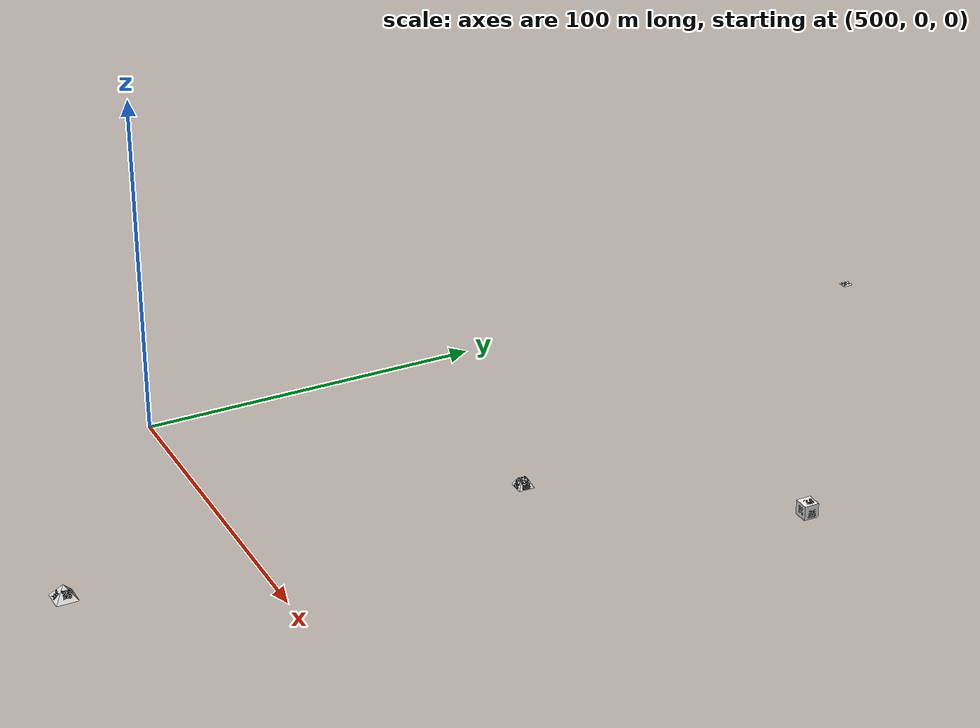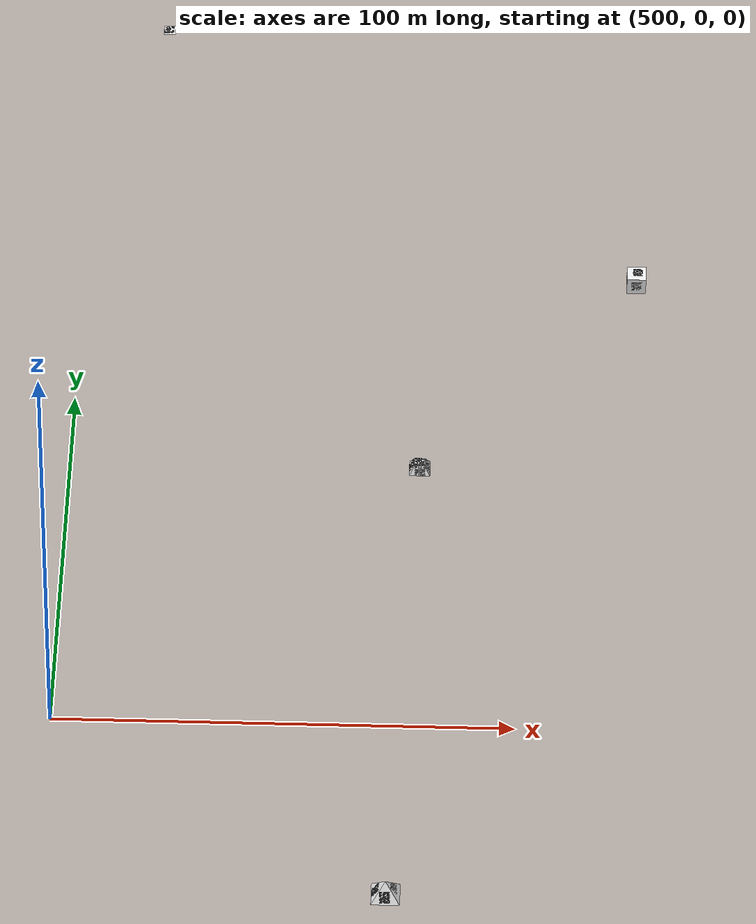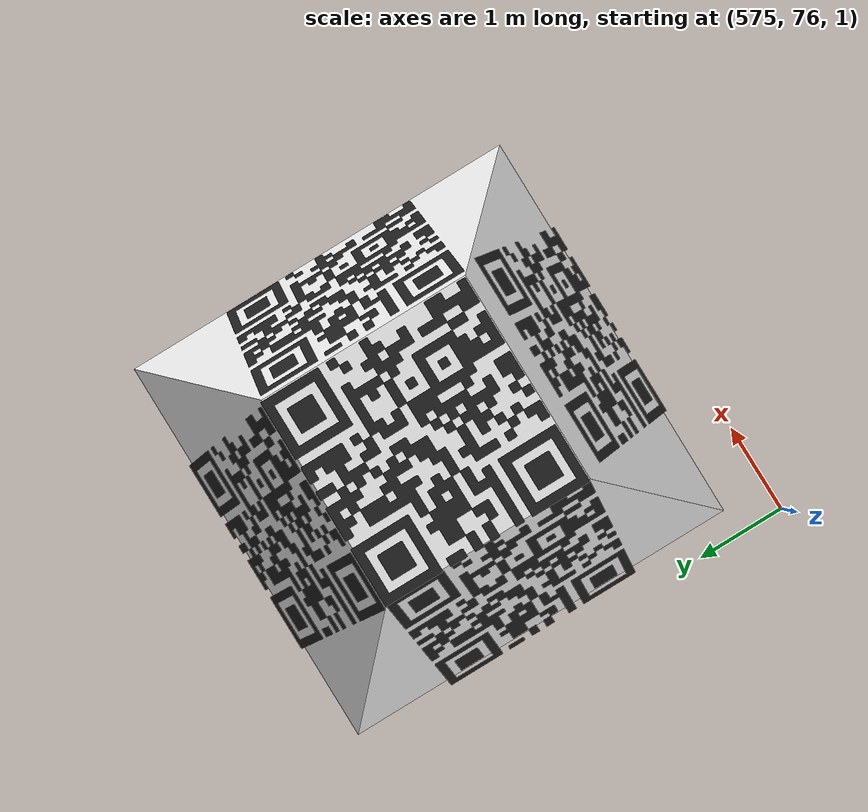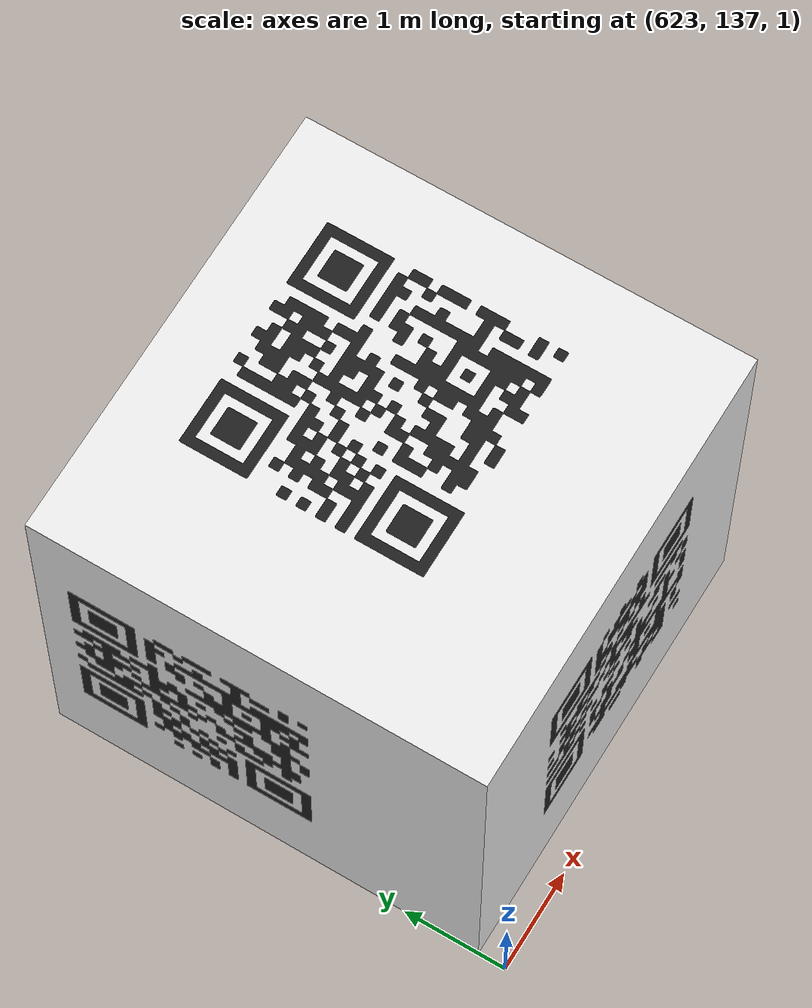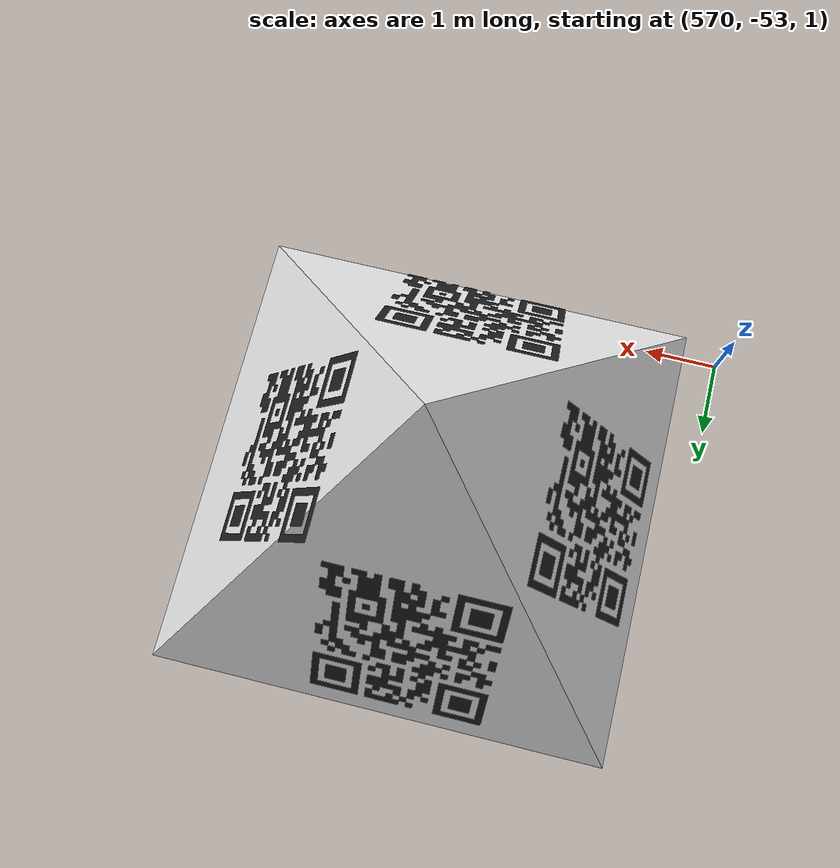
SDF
<sdf version="1.7">
 <world name="default">
  <physics name="default_physics" default="0" type="ode">
   <ode>
    <solver>
     <type>quick</type>
     <iters>100</iters>
     <sor>1</sor>
     <use_dynamic_moi_rescaling>0</use_dynamic_moi_rescaling>
    </solver>
    <constraints>
     <cfm>0</cfm>
     <erp>0.2</erp>
     <contact_max_correcting_vel>0.1</contact_max_correcting_vel>
     <contact_surface_layer>0</contact_surface_layer>
    </constraints>
   </ode>
   <real_time_update_rate>400</real_time_update_rate>
   <max_step_size>0.0025</max_step_size>
   <real_time_factor>1</real_time_factor>
  </physics>
  <scene>
   <sky><clouds><speed>5</speed></clouds></sky>
   <ambient>0.95 0.95 0.95 1</ambient>
   <background>0.3 0.3 0.3 1</background>
   <shadows>1</shadows>
  </scene>
  <gravity>0 0 -9.8</gravity>
  <magnetic_field>6e-06 2.3e-05 -4.2e-05</magnetic_field>
  <atmosphere type="adiabatic"/>
  <audio><device>default</device></audio>
  <spherical_coordinates>
   <surface_model>EARTH_WGS84</surface_model>
   <latitude_deg>0</latitude_deg>
   <longitude_deg>0</longitude_deg>
   <elevation>0</elevation>
   <heading_deg>0</heading_deg>
  </spherical_coordinates>
  <model name="square_qr">
   <pose>514.1 223.068 1 0 -0 0</pose>
   <static>1</static>
   <link name="link">
    <visual name="visual">
     <geometry><mesh><uri>model://square_qr/meshes/square_qr.dae</uri></mesh></geometry>
     <material><script><name>Gazebo/White</name><uri>__default__</uri></script></material>
    </visual>
   </link>
  </model>
  <model name="cube_qr_added">
   <pose>622.998 137.263 1 0 -0 0</pose>
   <static>1</static>
   <link name="link">
    <visual name="visual">
     <geometry>
      <mesh><scale>2 2 2</scale><uri>model://cube_qr_added/meshes/cube_qr_added.dae</uri></mesh>
     </geometry>
     <material><script><name>Gazebo/White</name><uri>__default__</uri></script></material>
    </visual>
   </link>
  </model>
  <model name="piramid_qr_cutted">
   <pose>575.303 76.5247 1 0 -0 0</pose>
   <static>1</static>
   <link name="link">
    <visual name="visual">
     <geometry>
      <mesh><scale>3 3 3</scale><uri>model://piramid_qr_cutted/meshes/piramid_qr_cutted.dae</uri></mesh>
     </geometry>
     <material><script><name>Gazebo/White</name><uri>__default__</uri></script></material>
    </visual>
   </link>
  </model>
  <model name="piramid_qr_added">
   <pose>570.474 -47.2439 1 0 -0 0</pose>
   <static>1</static>
   <link name="link">
    <visual name="visual">
     <geometry>
      <mesh><scale>5 5 5</scale><uri>model://piramid_qr_added/meshes/piramid_qr_added.dae</uri></mesh>
     </geometry>
     <material><script><name>Gazebo/White</name><uri>__default__</uri></script></material>
    </visual>
   </link>
  </model>
  <model name="testucusu_m">
   <pose>515.375 224.607 1.09305 0 -0 0</pose>
   <static>1</static>
   <link name="link">
    <visual name="visual">
     <geometry><mesh><scale>3 3 1e-06</scale><uri>model://QR_06/meshes/testucusu_m.stl</uri></mesh></geometry>
     <material><script><name>Gazebo/Black</name><uri>__default__</uri></script></material>
    </visual>
   </link>
  </model>
  <model name="teknofest_h">
   <pose>625.378 141.545 2.92254 -1.5708 0 0</pose>
   <static>1</static>
   <link name="link">
    <visual name="visual">
     <geometry><mesh><scale>3 3 1e-06</scale><uri>model://QR_12/meshes/teknofest_h.stl</uri></mesh></geometry>
     <material><script><name>Gazebo/Black</name><uri>__default__</uri></script></material>
    </visual>
   </link>
  </model>
  <model name="teknofest_h_0">
   <pose>627.28 139.476 2.56519 3.14159 1.57079 3.14159</pose>
   <static>1</static>
   <link name="link">
    <visual name="visual">
     <geometry><mesh><scale>3 3 1e-06</scale><uri>model://QR_12/meshes/teknofest_h.stl</uri></mesh></geometry>
     <material><script><name>Gazebo/Black</name><uri>__default__</uri></script></material>
    </visual>
   </link>
  </model>
  <model name="teknofest_h_1">
   <pose>625.155 137.249 3.25488 1.5708 -0 0</pose>
   <static>1</static>
   <link name="link">
    <visual name="visual">
     <geometry><mesh><scale>3 3 1e-06</scale><uri>model://QR_12/meshes/teknofest_h.stl</uri></mesh></geometry>
     <material><script><name>Gazebo/Black</name><uri>__default__</uri></script></material>
    </visual>
   </link>
  </model>
  <model name="teknofest_h_2">
   <pose>622.971 140.039 3.19742 3.14159 -1.57079 3.14159</pose>
   <static>1</static>
   <link name="link">
    <visual name="visual">
     <geometry><mesh><scale>3 3 1e-06</scale><uri>model://QR_12/meshes/teknofest_h.stl</uri></mesh></geometry>
     <material><script><name>Gazebo/Black</name><uri>__default__</uri></script></material>
    </visual>
   </link>
  </model>
  <model name="teknofest_h_3">
   <pose>625.371 139.72 5.2565 0 -0 0</pose>
   <static>1</static>
   <link name="link">
    <visual name="visual">
     <geometry><mesh><scale>3 3 1e-06</scale><uri>model://QR_12/meshes/teknofest_h.stl</uri></mesh></geometry>
     <material><script><name>Gazebo/Black</name><uri>__default__</uri></script></material>
    </visual>
   </link>
  </model>
  <model name="mustafakemalataturk_m">
   <pose>577.664 77.0007 2.07285 1.1092 -0 0</pose>
   <static>1</static>
   <link name="link">
    <visual name="visual">
     <geometry>
      <mesh><scale>3 3 1e-06</scale><uri>model://QR_14/meshes/mustafakemalataturk_m.stl</uri></mesh>
     </geometry>
     <material><script><name>Gazebo/Black</name><uri>__default__</uri></script></material>
    </visual>
   </link>
  </model>
  <model name="mustafakemalataturk_m_0">
   <pose>577.533 80.5429 1.99197 -1.0493 0 0</pose>
   <static>1</static>
   <link name="link">
    <visual name="visual">
     <geometry>
      <mesh><scale>3 3 1e-06</scale><uri>model://QR_14/meshes/mustafakemalataturk_m.stl</uri></mesh>
     </geometry>
     <material><script><name>Gazebo/Black</name><uri>__default__</uri></script></material>
    </visual>
   </link>
  </model>
  <model name="mustafakemalataturk_m_1">
   <pose>579.296 78.7844 2.02859 0 1.07161 0</pose>
   <static>1</static>
   <link name="link">
    <visual name="visual">
     <geometry>
      <mesh><scale>3 3 1e-06</scale><uri>model://QR_14/meshes/mustafakemalataturk_m.stl</uri></mesh>
     </geometry>
     <material><script><name>Gazebo/Black</name><uri>__default__</uri></script></material>
    </visual>
   </link>
  </model>
  <model name="mustafakemalataturk_m_2">
   <pose>575.839 78.8093 2.08774 0 -1.02191 0</pose>
   <static>1</static>
   <link name="link">
    <visual name="visual">
     <geometry>
      <mesh><scale>3 3 1e-06</scale><uri>model://QR_14/meshes/mustafakemalataturk_m.stl</uri></mesh>
     </geometry>
     <material><script><name>Gazebo/Black</name><uri>__default__</uri></script></material>
    </visual>
   </link>
  </model>
  <model name="mustafakemalataturk_m_3">
   <pose>577.557 78.8155 3.08352 0 -0 0</pose>
   <static>1</static>
   <link name="link">
    <visual name="visual">
     <geometry>
      <mesh><scale>3 3 1e-06</scale><uri>model://QR_14/meshes/mustafakemalataturk_m.stl</uri></mesh>
     </geometry>
     <material><script><name>Gazebo/Black</name><uri>__default__</uri></script></material>
    </visual>
   </link>
  </model>
  <model name="istikbalgoklerdedir_q">
   <pose>573.281 -48.0778 2.1302 -0.92429 0 0</pose>
   <static>1</static>
   <link name="link">
    <visual name="visual">
     <geometry>
      <mesh><scale>3 3 1e-06</scale><uri>model://QR_17/meshes/istikbalgoklerdedir_q.stl</uri></mesh>
     </geometry>
     <material><script><name>Gazebo/Black</name><uri>__default__</uri></script></material>
    </visual>
   </link>
  </model>
  <model name="istikbalgoklerdedir_q_0">
   <pose>571.357 -50.1727 2.2135 0 -0.92377 0</pose>
   <static>1</static>
   <link name="link">
    <visual name="visual">
     <geometry>
      <mesh><scale>3 3 1e-06</scale><uri>model://QR_17/meshes/istikbalgoklerdedir_q.stl</uri></mesh>
     </geometry>
     <material><script><name>Gazebo/Black</name><uri>__default__</uri></script></material>
    </visual>
   </link>
  </model>
  <model name="istikbalgoklerdedir_q_1">
   <pose>573.406 -52.4528 2.3199 0.887667 -0 0</pose>
   <static>1</static>
   <link name="link">
    <visual name="visual">
     <geometry>
      <mesh><scale>3 3 1e-06</scale><uri>model://QR_17/meshes/istikbalgoklerdedir_q.stl</uri></mesh>
     </geometry>
     <material><script><name>Gazebo/Black</name><uri>__default__</uri></script></material>
    </visual>
   </link>
  </model>
  <model name="istikbalgoklerdedir_q_2">
   <pose>575.216 -49.9618 2.89125 0 0.922451 0</pose>
   <static>1</static>
   <link name="link">
    <visual name="visual">
     <geometry>
      <mesh><scale>3 3 1e-06</scale><uri>model://QR_17/meshes/istikbalgoklerdedir_q.stl</uri></mesh>
     </geometry>
     <material><script><name>Gazebo/Black</name><uri>__default__</uri></script></material>
    </visual>
   </link>
  </model>
  <light name="sun" type="directional">
   <pose>71.4111 102.829 10 0 -0 0</pose>
   <diffuse>0.8 0.8 0.8 1</diffuse>
   <specular>0.2 0.2 0.2 1</specular>
   <attenuation>
    <range>1000</range>
    <constant>0.9</constant>
    <linear>0.01</linear>
    <quadratic>0.001</quadratic>
   </attenuation>
   <direction>-0.5 0.1 -0.9</direction>
   <spot><inner_angle>0</inner_angle><outer_angle>0</outer_angle><falloff>0</falloff></spot>
  </light>
 </world>
</sdf>
